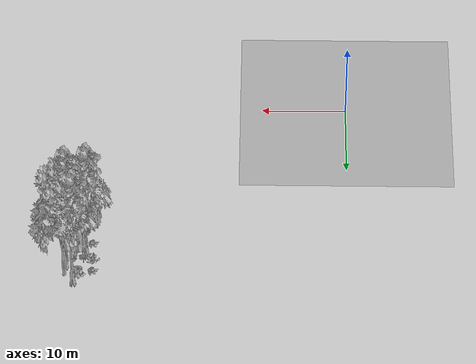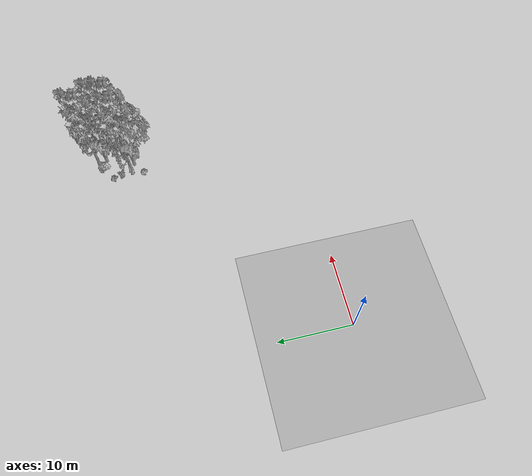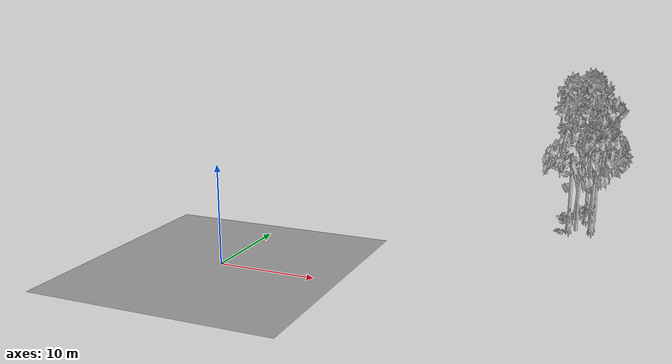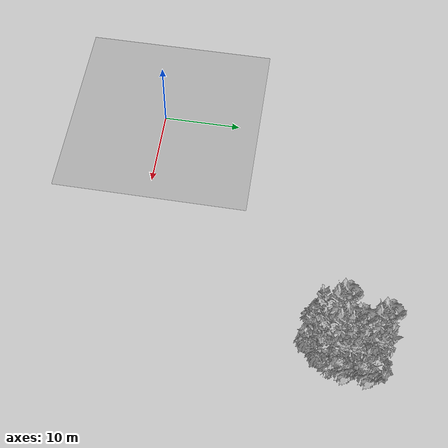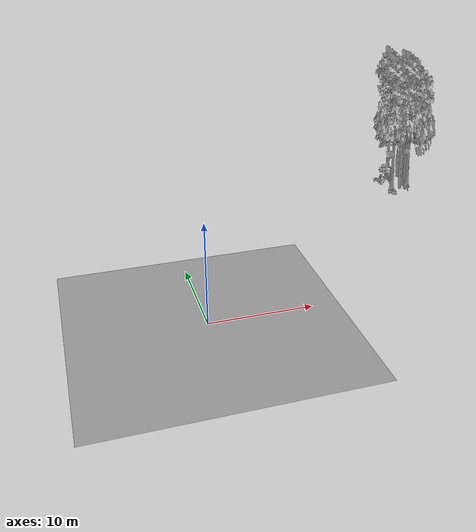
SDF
<sdf version="1.7">
 <world name="default">
  <model name="ground_plane">
   <static>1</static>
   <link name="link">
    <collision name="collision">
     <pose>-50 0 0 0 -0 0</pose>
     <geometry><plane><normal>0 0 1</normal><size>80 80</size></plane></geometry>
     <surface><contact><ode><min_depth>0.01</min_depth><max_vel>0</max_vel></ode></contact></surface>
    </collision>
    <visual name="grass">
     <cast_shadows>0</cast_shadows>
     <geometry>
      <mesh>
       <scale>0.46714285714285714 0.46714285714285714 0.1</scale>
       <uri>file://grass_plane/meshes/grass_plane.dae</uri>
      </mesh>
     </geometry>
    </visual>
   </link>
  </model>
  <model name="Tree 160">
   <static>1</static>
   <pose>32.2255131957195 27.384678821618962 0 1.57079 -0 0</pose>
   <link name="link">
    <collision name="collision">
     <geometry><mesh><scale>3.5 5 3.5</scale><uri>model://tree_2/meshes/tree_2.obj</uri></mesh></geometry>
    </collision>
    <visual name="visual">
     <geometry><mesh><scale>3.5 5 3.5</scale><uri>model://tree_2/meshes/tree_2.obj</uri></mesh></geometry>
    </visual>
   </link>
  </model>
  <model name="Tree 206">
   <static>1</static>
   <pose>32.30929715299054 24.6364566982283 0 1.57079 -0 0</pose>
   <link name="link">
    <collision name="collision">
     <geometry><mesh><scale>3.5 5 3.5</scale><uri>model://tree_9/meshes/tree_9.obj</uri></mesh></geometry>
    </collision>
    <visual name="visual">
     <geometry><mesh><scale>3.5 5 3.5</scale><uri>model://tree_9/meshes/tree_9.obj</uri></mesh></geometry>
    </visual>
   </link>
  </model>
  <model name="Tree 348">
   <static>1</static>
   <pose>31.302409661798947 28.36359462395373 0 1.57079 -0 0</pose>
   <link name="link">
    <collision name="collision">
     <geometry><mesh><scale>3.5 5 3.5</scale><uri>model://tree_9/meshes/tree_9.obj</uri></mesh></geometry>
    </collision>
    <visual name="visual">
     <geometry><mesh><scale>3.5 5 3.5</scale><uri>model://tree_9/meshes/tree_9.obj</uri></mesh></geometry>
    </visual>
   </link>
  </model>
  <model name="Tree 360">
   <static>1</static>
   <pose>29.925885199964227 24.155123808879978 0 1.57079 -0 0</pose>
   <link name="link">
    <collision name="collision">
     <geometry><mesh><scale>3.5 5 3.5</scale><uri>model://tree_9/meshes/tree_9.obj</uri></mesh></geometry>
    </collision>
    <visual name="visual">
     <geometry><mesh><scale>3.5 5 3.5</scale><uri>model://tree_9/meshes/tree_9.obj</uri></mesh></geometry>
    </visual>
   </link>
  </model>
  <model name="Tree 451">
   <static>1</static>
   <pose>30.72275000937195 23.595574627182863 0 1.57079 -0 0</pose>
   <link name="link">
    <collision name="collision">
     <geometry><mesh><scale>3.5 5 3.5</scale><uri>model://tree_2/meshes/tree_2.obj</uri></mesh></geometry>
    </collision>
    <visual name="visual">
     <geometry><mesh><scale>3.5 5 3.5</scale><uri>model://tree_2/meshes/tree_2.obj</uri></mesh></geometry>
    </visual>
   </link>
  </model>
  <model name="Tree 589">
   <static>1</static>
   <pose>32.153618062458705 24.924027215447154 0 1.57079 -0 0</pose>
   <link name="link">
    <collision name="collision">
     <geometry><mesh><scale>3.5 5 3.5</scale><uri>model://tree_2/meshes/tree_2.obj</uri></mesh></geometry>
    </collision>
    <visual name="visual">
     <geometry><mesh><scale>3.5 5 3.5</scale><uri>model://tree_2/meshes/tree_2.obj</uri></mesh></geometry>
    </visual>
   </link>
  </model>
  <model name="Tree 610">
   <static>1</static>
   <pose>32.29055683989924 25.787087967900874 0 1.57079 -0 0</pose>
   <link name="link">
    <collision name="collision">
     <geometry><mesh><scale>3.5 5 3.5</scale><uri>model://tree_9/meshes/tree_9.obj</uri></mesh></geometry>
    </collision>
    <visual name="visual">
     <geometry><mesh><scale>3.5 5 3.5</scale><uri>model://tree_9/meshes/tree_9.obj</uri></mesh></geometry>
    </visual>
   </link>
  </model>
  <model name="Bush 13">
   <static>1</static>
   <pose>29.079472416827684 25.497097321148573 0 1.57079 -0 0</pose>
   <link name="link">
    <collision name="collision">
     <geometry><mesh><scale>2 2 2</scale><uri>model://bush_4/meshes/bush_4.obj</uri></mesh></geometry>
     <surface><contact><collide_without_contact>false</collide_without_contact></contact></surface>
    </collision>
    <visual name="visual">
     <geometry><mesh><scale>2 2 2</scale><uri>model://bush_4/meshes/bush_4.obj</uri></mesh></geometry>
    </visual>
   </link>
  </model>
  <model name="Bush 213">
   <static>1</static>
   <pose>29.110719156399284 26.740529128465425 0 1.57079 -0 0</pose>
   <link name="link">
    <collision name="collision">
     <geometry><mesh><scale>2 2 2</scale><uri>model://bush_2/meshes/bush_2.obj</uri></mesh></geometry>
     <surface><contact><collide_without_contact>false</collide_without_contact></contact></surface>
    </collision>
    <visual name="visual">
     <geometry><mesh><scale>2 2 2</scale><uri>model://bush_2/meshes/bush_2.obj</uri></mesh></geometry>
    </visual>
   </link>
  </model>
  <model name="Bush 361">
   <static>1</static>
   <pose>30.805307179832212 27.72145181187244 0 1.57079 -0 0</pose>
   <link name="link">
    <collision name="collision">
     <geometry><mesh><scale>2 2 2</scale><uri>model://bush_1/meshes/bush_1.obj</uri></mesh></geometry>
     <surface><contact><collide_without_contact>false</collide_without_contact></contact></surface>
    </collision>
    <visual name="visual">
     <geometry><mesh><scale>2 2 2</scale><uri>model://bush_1/meshes/bush_1.obj</uri></mesh></geometry>
    </visual>
   </link>
  </model>
  <model name="Bush 527">
   <static>1</static>
   <pose>30.21853536030666 25.409453034923857 0 1.57079 -0 0</pose>
   <link name="link">
    <collision name="collision">
     <geometry><mesh><scale>2 2 2</scale><uri>model://bush_5/meshes/bush_5.obj</uri></mesh></geometry>
     <surface><contact><collide_without_contact>false</collide_without_contact></contact></surface>
    </collision>
    <visual name="visual">
     <geometry><mesh><scale>2 2 2</scale><uri>model://bush_5/meshes/bush_5.obj</uri></mesh></geometry>
    </visual>
   </link>
  </model>
  <model name="Bush 633">
   <static>1</static>
   <pose>29.205971243965777 22.413499872444987 0 1.57079 -0 0</pose>
   <link name="link">
    <collision name="collision">
     <geometry><mesh><scale>2 2 2</scale><uri>model://bush_2/meshes/bush_2.obj</uri></mesh></geometry>
     <surface><contact><collide_without_contact>false</collide_without_contact></contact></surface>
    </collision>
    <visual name="visual">
     <geometry><mesh><scale>2 2 2</scale><uri>model://bush_2/meshes/bush_2.obj</uri></mesh></geometry>
    </visual>
   </link>
  </model>
 </world>
</sdf>
